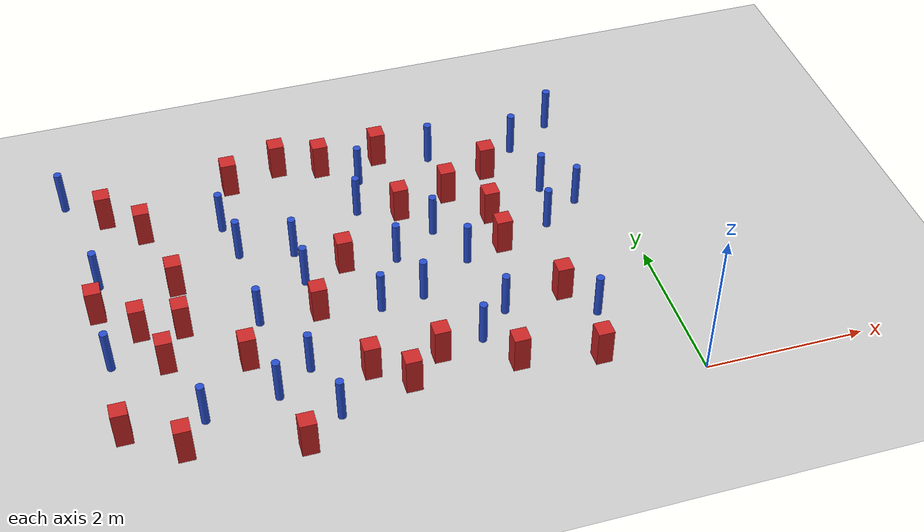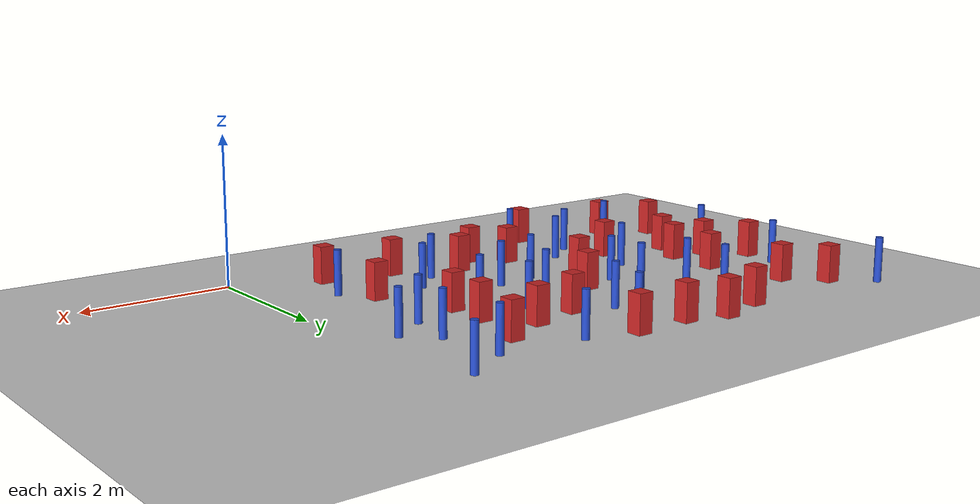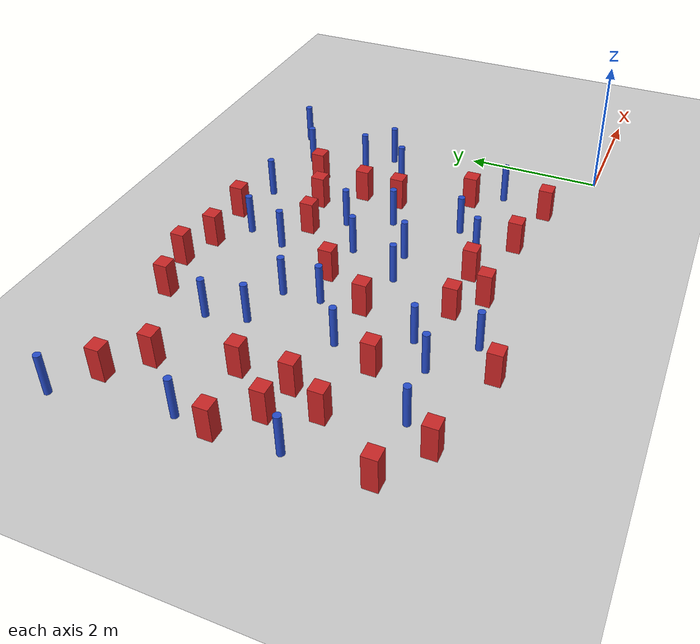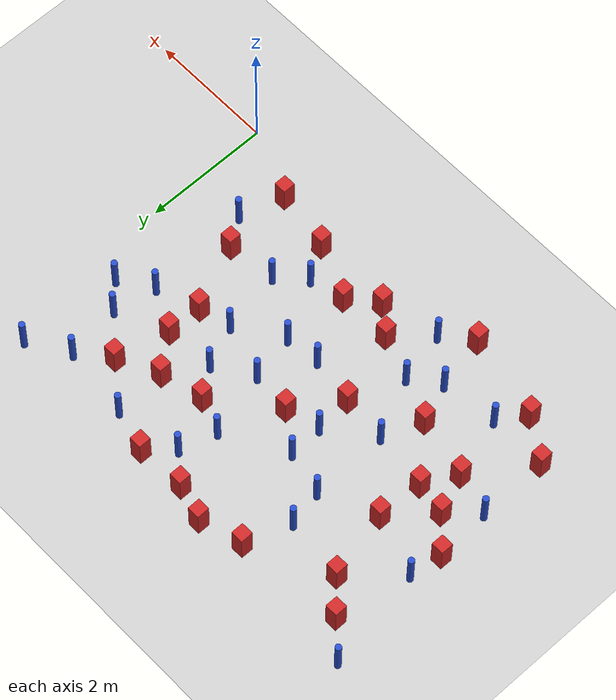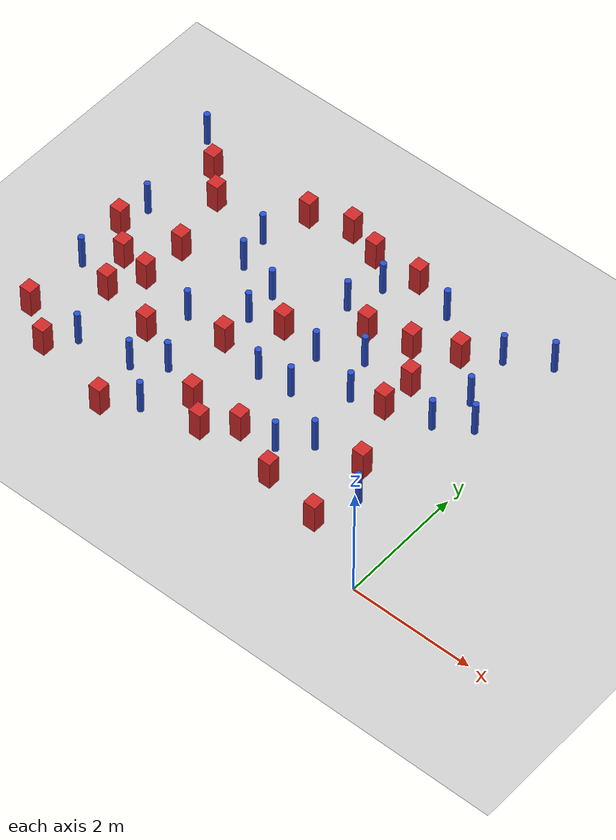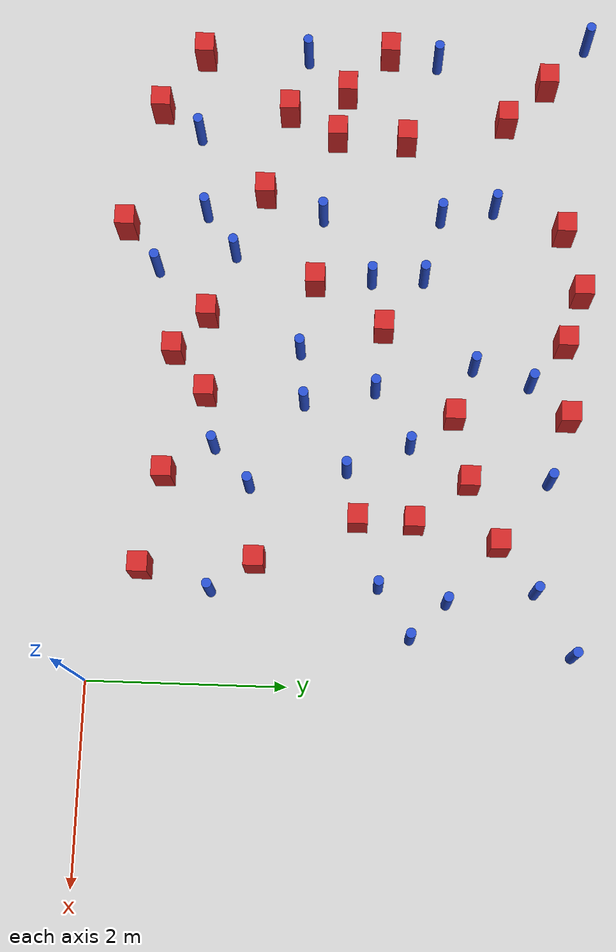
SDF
<sdf version="1.6">
 <world name="default">
  <model name="ground_plane">
   <static>1</static>
   <link name="link">
    <collision name="collision">
     <geometry><plane><normal>0 0 1</normal><size>100 100</size></plane></geometry>
     <surface><friction><ode><mu>100</mu><mu2>50</mu2></ode></friction></surface>
    </collision>
    <visual name="visual">
     <cast_shadows>0</cast_shadows>
     <geometry><plane><normal>0 0 1</normal><size>100 100</size></plane></geometry>
     <material>
      <ambient>1.0 1.0 1.0 1.0</ambient>
      <diffuse>0.8 0.8 0.8 1.0</diffuse>
      <specular>0.01 0.01 0.01 1.000000</specular>
     </material>
    </visual>
   </link>
  </model>
  <model name="square_post_obstacle3">
   <static>true</static>
   <pose>-6.75841199657 2.84869637535 8.22691968438e-08 7.2212513382e-06 -7.54495500217e-07 2.29674213826e-05</pose>
   <link name="link">
    <pose>0 0 0.25 0 -0 0</pose>
    <inertial>
     <mass>100</mass>
     <inertia>
      <ixx>0.166667</ixx>
      <ixy>0</ixy>
      <ixz>0</ixz>
      <iyy>0.166667</iyy>
      <iyz>0</iyz>
      <izz>0.166667</izz>
     </inertia>
    </inertial>
    <collision name="collision"><geometry><box><size>.2 .2 .5</size></box></geometry></collision>
    <visual name="visual">
     <geometry><box><size>.2 .2 .5</size></box></geometry>
     <material>
      <script><name>Gazebo/Red</name><uri>file://media/materials/scripts/gazebo.material</uri></script>
     </material>
    </visual>
   </link>
  </model>
  <model name="square_post_obstacle11">
   <static>true</static>
   <pose>-3.38330933852 0.719082300873 8.22691968438e-08 7.2212513382e-06 -7.54495500217e-07 2.29674213826e-05</pose>
   <link name="link">
    <pose>0 0 0.25 0 -0 0</pose>
    <inertial>
     <mass>100</mass>
     <inertia>
      <ixx>0.166667</ixx>
      <ixy>0</ixy>
      <ixz>0</ixz>
      <iyy>0.166667</iyy>
      <iyz>0</iyz>
      <izz>0.166667</izz>
     </inertia>
    </inertial>
    <collision name="collision"><geometry><box><size>.2 .2 .5</size></box></geometry></collision>
    <visual name="visual">
     <geometry><box><size>.2 .2 .5</size></box></geometry>
     <material>
      <script><name>Gazebo/Red</name><uri>file://media/materials/scripts/gazebo.material</uri></script>
     </material>
    </visual>
   </link>
  </model>
  <model name="square_post_obstacle15">
   <static>true</static>
   <pose>-1.22572078398 1.6397507249 8.22691968438e-08 7.2212513382e-06 -7.54495500217e-07 2.29674213826e-05</pose>
   <link name="link">
    <pose>0 0 0.25 0 -0 0</pose>
    <inertial>
     <mass>100</mass>
     <inertia>
      <ixx>0.166667</ixx>
      <ixy>0</ixy>
      <ixz>0</ixz>
      <iyy>0.166667</iyy>
      <iyz>0</iyz>
      <izz>0.166667</izz>
     </inertia>
    </inertial>
    <collision name="collision"><geometry><box><size>.2 .2 .5</size></box></geometry></collision>
    <visual name="visual">
     <geometry><box><size>.2 .2 .5</size></box></geometry>
     <material>
      <script><name>Gazebo/Red</name><uri>file://media/materials/scripts/gazebo.material</uri></script>
     </material>
    </visual>
   </link>
  </model>
  <model name="square_post_obstacle19">
   <static>true</static>
   <pose>-4.12237302299 4.8903706107 8.22691968438e-08 7.2212513382e-06 -7.54495500217e-07 2.29674213826e-05</pose>
   <link name="link">
    <pose>0 0 0.25 0 -0 0</pose>
    <inertial>
     <mass>100</mass>
     <inertia>
      <ixx>0.166667</ixx>
      <ixy>0</ixy>
      <ixz>0</ixz>
      <iyy>0.166667</iyy>
      <iyz>0</iyz>
      <izz>0.166667</izz>
     </inertia>
    </inertial>
    <collision name="collision"><geometry><box><size>.2 .2 .5</size></box></geometry></collision>
    <visual name="visual">
     <geometry><box><size>.2 .2 .5</size></box></geometry>
     <material>
      <script><name>Gazebo/Red</name><uri>file://media/materials/scripts/gazebo.material</uri></script>
     </material>
    </visual>
   </link>
  </model>
  <model name="pole_obstacle29">
   <static>true</static>
   <pose>-5.77524522382 0.86929448926 2.88873142074e-08 -9.90536689837e-09 4.60219948989e-07 -1.2096599496e-07</pose>
   <link name="link">
    <pose>0 0 0.3 0 -0 0</pose>
    <inertial>
     <mass>1</mass>
     <inertia><ixx>0.145833</ixx><ixy>0</ixy><ixz>0</ixz><iyy>0.145833</iyy><iyz>0</iyz><izz>0.125</izz></inertia>
    </inertial>
    <collision name="collision">
     <geometry><cylinder><radius>0.05</radius><length>.6</length></cylinder></geometry>
    </collision>
    <visual name="visual">
     <geometry><cylinder><radius>0.05</radius><length>.6</length></cylinder></geometry>
     <material>
      <script><name>Gazebo/Blue</name><uri>file://media/materials/scripts/gazebo.material</uri></script>
     </material>
    </visual>
   </link>
  </model>
  <model name="square_post_obstacle21">
   <static>true</static>
   <pose>-5.79454267416 2.32009019014 8.22691968438e-08 7.2212513382e-06 -7.54495500217e-07 2.29674213826e-05</pose>
   <link name="link">
    <pose>0 0 0.25 0 -0 0</pose>
    <inertial>
     <mass>100</mass>
     <inertia>
      <ixx>0.166667</ixx>
      <ixy>0</ixy>
      <ixz>0</ixz>
      <iyy>0.166667</iyy>
      <iyz>0</iyz>
      <izz>0.166667</izz>
     </inertia>
    </inertial>
    <collision name="collision"><geometry><box><size>.2 .2 .5</size></box></geometry></collision>
    <visual name="visual">
     <geometry><box><size>.2 .2 .5</size></box></geometry>
     <material>
      <script><name>Gazebo/Red</name><uri>file://media/materials/scripts/gazebo.material</uri></script>
     </material>
    </visual>
   </link>
  </model>
  <model name="pole_obstacle31">
   <static>true</static>
   <pose>-3.29496590169 3.79206971627 2.88873142074e-08 -9.90536689597e-09 4.60219948995e-07 -1.20965994957e-07</pose>
   <link name="link">
    <pose>0 0 0.3 0 -0 0</pose>
    <inertial>
     <mass>1</mass>
     <inertia><ixx>0.145833</ixx><ixy>0</ixy><ixz>0</ixz><iyy>0.145833</iyy><iyz>0</iyz><izz>0.125</izz></inertia>
    </inertial>
    <collision name="collision">
     <geometry><cylinder><radius>0.05</radius><length>.6</length></cylinder></geometry>
    </collision>
    <visual name="visual">
     <geometry><cylinder><radius>0.05</radius><length>.6</length></cylinder></geometry>
     <material>
      <script><name>Gazebo/Blue</name><uri>file://media/materials/scripts/gazebo.material</uri></script>
     </material>
    </visual>
   </link>
  </model>
  <model name="square_post_obstacle26">
   <static>true</static>
   <pose>-6.44920168257 4.52247922896 8.22691968438e-08 7.22125133819e-06 -7.54495500217e-07 2.29674213826e-05</pose>
   <link name="link">
    <pose>0 0 0.25 0 -0 0</pose>
    <inertial>
     <mass>100</mass>
     <inertia>
      <ixx>0.166667</ixx>
      <ixy>0</ixy>
      <ixz>0</ixz>
      <iyy>0.166667</iyy>
      <iyz>0</iyz>
      <izz>0.166667</izz>
     </inertia>
    </inertial>
    <collision name="collision"><geometry><box><size>.2 .2 .5</size></box></geometry></collision>
    <visual name="visual">
     <geometry><box><size>.2 .2 .5</size></box></geometry>
     <material>
      <script><name>Gazebo/Red</name><uri>file://media/materials/scripts/gazebo.material</uri></script>
     </material>
    </visual>
   </link>
  </model>
  <model name="pole_obstacle34">
   <static>true</static>
   <pose>-4.91597118742 3.42735828325 2.88873142074e-08 -9.90536690245e-09 4.6021994898e-07 -1.20965994966e-07</pose>
   <link name="link">
    <pose>0 0 0.3 0 -0 0</pose>
    <inertial>
     <mass>1</mass>
     <inertia><ixx>0.145833</ixx><ixy>0</ixy><ixz>0</ixz><iyy>0.145833</iyy><iyz>0</iyz><izz>0.125</izz></inertia>
    </inertial>
    <collision name="collision">
     <geometry><cylinder><radius>0.05</radius><length>.6</length></cylinder></geometry>
    </collision>
    <visual name="visual">
     <geometry><cylinder><radius>0.05</radius><length>.6</length></cylinder></geometry>
     <material>
      <script><name>Gazebo/Blue</name><uri>file://media/materials/scripts/gazebo.material</uri></script>
     </material>
    </visual>
   </link>
  </model>
  <model name="pole_obstacle53">
   <static>true</static>
   <pose>-2.44733559677 3.15941907031 2.88873142074e-08 -9.90536690232e-09 4.6021994898e-07 -1.20965994968e-07</pose>
   <link name="link">
    <pose>0 0 0.3 0 -0 0</pose>
    <inertial>
     <mass>1</mass>
     <inertia><ixx>0.145833</ixx><ixy>0</ixy><ixz>0</ixz><iyy>0.145833</iyy><iyz>0</iyz><izz>0.125</izz></inertia>
    </inertial>
    <collision name="collision">
     <geometry><cylinder><radius>0.05</radius><length>.6</length></cylinder></geometry>
    </collision>
    <visual name="visual">
     <geometry><cylinder><radius>0.05</radius><length>.6</length></cylinder></geometry>
     <material>
      <script><name>Gazebo/Blue</name><uri>file://media/materials/scripts/gazebo.material</uri></script>
     </material>
    </visual>
   </link>
  </model>
  <model name="square_post_obstacle41">
   <static>true</static>
   <pose>-6.01156486565 4.09463652384 8.22691968438e-08 7.22125133819e-06 -7.54495500217e-07 2.29674213826e-05</pose>
   <link name="link">
    <pose>0 0 0.25 0 -0 0</pose>
    <inertial>
     <mass>100</mass>
     <inertia>
      <ixx>0.166667</ixx>
      <ixy>0</ixy>
      <ixz>0</ixz>
      <iyy>0.166667</iyy>
      <iyz>0</iyz>
      <izz>0.166667</izz>
     </inertia>
    </inertial>
    <collision name="collision"><geometry><box><size>.2 .2 .5</size></box></geometry></collision>
    <visual name="visual">
     <geometry><box><size>.2 .2 .5</size></box></geometry>
     <material>
      <script><name>Gazebo/Red</name><uri>file://media/materials/scripts/gazebo.material</uri></script>
     </material>
    </visual>
   </link>
  </model>
  <model name="pole_obstacle59">
   <static>true</static>
   <pose>-0.500387353184 3.1998149714 2.88873142074e-08 -9.90536689656e-09 4.60219948993e-07 -1.20965994958e-07</pose>
   <link name="link">
    <pose>0 0 0.3 0 -0 0</pose>
    <inertial>
     <mass>1</mass>
     <inertia><ixx>0.145833</ixx><ixy>0</ixy><ixz>0</ixz><iyy>0.145833</iyy><iyz>0</iyz><izz>0.125</izz></inertia>
    </inertial>
    <collision name="collision">
     <geometry><cylinder><radius>0.05</radius><length>.6</length></cylinder></geometry>
    </collision>
    <visual name="visual">
     <geometry><cylinder><radius>0.05</radius><length>.6</length></cylinder></geometry>
     <material>
      <script><name>Gazebo/Blue</name><uri>file://media/materials/scripts/gazebo.material</uri></script>
     </material>
    </visual>
   </link>
  </model>
  <model name="pole_obstacle62">
   <static>true</static>
   <pose>-6.68137312361 3.35930939322 2.88873142074e-08 -9.90536690245e-09 4.6021994898e-07 -1.20965994966e-07</pose>
   <link name="link">
    <pose>0 0 0.3 0 -0 0</pose>
    <inertial>
     <mass>1</mass>
     <inertia><ixx>0.145833</ixx><ixy>0</ixy><ixz>0</ixz><iyy>0.145833</iyy><iyz>0</iyz><izz>0.125</izz></inertia>
    </inertial>
    <collision name="collision">
     <geometry><cylinder><radius>0.05</radius><length>.6</length></cylinder></geometry>
    </collision>
    <visual name="visual">
     <geometry><cylinder><radius>0.05</radius><length>.6</length></cylinder></geometry>
     <material>
      <script><name>Gazebo/Blue</name><uri>file://media/materials/scripts/gazebo.material</uri></script>
     </material>
    </visual>
   </link>
  </model>
  <model name="pole_obstacle63">
   <static>true</static>
   <pose>-4.24091411456 3.2633486273 2.88873142074e-08 -9.90536690245e-09 4.6021994898e-07 -1.20965994966e-07</pose>
   <link name="link">
    <pose>0 0 0.3 0 -0 0</pose>
    <inertial>
     <mass>1</mass>
     <inertia><ixx>0.145833</ixx><ixy>0</ixy><ixz>0</ixz><iyy>0.145833</iyy><iyz>0</iyz><izz>0.125</izz></inertia>
    </inertial>
    <collision name="collision">
     <geometry><cylinder><radius>0.05</radius><length>.6</length></cylinder></geometry>
    </collision>
    <visual name="visual">
     <geometry><cylinder><radius>0.05</radius><length>.6</length></cylinder></geometry>
     <material>
      <script><name>Gazebo/Blue</name><uri>file://media/materials/scripts/gazebo.material</uri></script>
     </material>
    </visual>
   </link>
  </model>
  <model name="square_post_obstacle51">
   <static>true</static>
   <pose>-4.79568698771 4.70818595058 8.22691968438e-08 7.2212513382e-06 -7.54495500217e-07 2.29674213826e-05</pose>
   <link name="link">
    <pose>0 0 0.25 0 -0 0</pose>
    <inertial>
     <mass>100</mass>
     <inertia>
      <ixx>0.166667</ixx>
      <ixy>0</ixy>
      <ixz>0</ixz>
      <iyy>0.166667</iyy>
      <iyz>0</iyz>
      <izz>0.166667</izz>
     </inertia>
    </inertial>
    <collision name="collision"><geometry><box><size>.2 .2 .5</size></box></geometry></collision>
    <visual name="visual">
     <geometry><box><size>.2 .2 .5</size></box></geometry>
     <material>
      <script><name>Gazebo/Red</name><uri>file://media/materials/scripts/gazebo.material</uri></script>
     </material>
    </visual>
   </link>
  </model>
  <model name="square_post_obstacle52">
   <static>true</static>
   <pose>-1.67509126283 2.65043922061 8.22691968438e-08 7.2212513382e-06 -7.54495500217e-07 2.29674213826e-05</pose>
   <link name="link">
    <pose>0 0 0.25 0 -0 0</pose>
    <inertial>
     <mass>100</mass>
     <inertia>
      <ixx>0.166667</ixx>
      <ixy>0</ixy>
      <ixz>0</ixz>
      <iyy>0.166667</iyy>
      <iyz>0</iyz>
      <izz>0.166667</izz>
     </inertia>
    </inertial>
    <collision name="collision"><geometry><box><size>.2 .2 .5</size></box></geometry></collision>
    <visual name="visual">
     <geometry><box><size>.2 .2 .5</size></box></geometry>
     <material>
      <script><name>Gazebo/Red</name><uri>file://media/materials/scripts/gazebo.material</uri></script>
     </material>
    </visual>
   </link>
  </model>
  <model name="square_post_obstacle58">
   <static>true</static>
   <pose>-1.66645136267 3.21528522979 8.22691968438e-08 7.2212513382e-06 -7.54495500217e-07 2.29674213826e-05</pose>
   <link name="link">
    <pose>0 0 0.25 0 -0 0</pose>
    <inertial>
     <mass>100</mass>
     <inertia>
      <ixx>0.166667</ixx>
      <ixy>0</ixy>
      <ixz>0</ixz>
      <iyy>0.166667</iyy>
      <iyz>0</iyz>
      <izz>0.166667</izz>
     </inertia>
    </inertial>
    <collision name="collision"><geometry><box><size>.2 .2 .5</size></box></geometry></collision>
    <visual name="visual">
     <geometry><box><size>.2 .2 .5</size></box></geometry>
     <material>
      <script><name>Gazebo/Red</name><uri>file://media/materials/scripts/gazebo.material</uri></script>
     </material>
    </visual>
   </link>
  </model>
  <model name="pole_obstacle69">
   <static>true</static>
   <pose>-2.17665470836 2.5263758459 2.88873142074e-08 -9.90536690232e-09 4.6021994898e-07 -1.20965994968e-07</pose>
   <link name="link">
    <pose>0 0 0.3 0 -0 0</pose>
    <inertial>
     <mass>1</mass>
     <inertia><ixx>0.145833</ixx><ixy>0</ixy><ixz>0</ixz><iyy>0.145833</iyy><iyz>0</iyz><izz>0.125</izz></inertia>
    </inertial>
    <collision name="collision">
     <geometry><cylinder><radius>0.05</radius><length>.6</length></cylinder></geometry>
    </collision>
    <visual name="visual">
     <geometry><cylinder><radius>0.05</radius><length>.6</length></cylinder></geometry>
     <material>
      <script><name>Gazebo/Blue</name><uri>file://media/materials/scripts/gazebo.material</uri></script>
     </material>
    </visual>
   </link>
  </model>
  <model name="pole_obstacle70">
   <static>true</static>
   <pose>-4.90031724707 0.978062638203 2.88873142074e-08 -9.90536689329e-09 4.60219949001e-07 -1.20965994952e-07</pose>
   <link name="link">
    <pose>0 0 0.3 0 -0 0</pose>
    <inertial>
     <mass>1</mass>
     <inertia><ixx>0.145833</ixx><ixy>0</ixy><ixz>0</ixz><iyy>0.145833</iyy><iyz>0</iyz><izz>0.125</izz></inertia>
    </inertial>
    <collision name="collision">
     <geometry><cylinder><radius>0.05</radius><length>.6</length></cylinder></geometry>
    </collision>
    <visual name="visual">
     <geometry><cylinder><radius>0.05</radius><length>.6</length></cylinder></geometry>
     <material>
      <script><name>Gazebo/Blue</name><uri>file://media/materials/scripts/gazebo.material</uri></script>
     </material>
    </visual>
   </link>
  </model>
  <model name="square_post_obstacle60">
   <static>true</static>
   <pose>-5.13336520504 1.5876064809 8.22691968438e-08 7.2212513382e-06 -7.54495500217e-07 2.29674213826e-05</pose>
   <link name="link">
    <pose>0 0 0.25 0 -0 0</pose>
    <inertial>
     <mass>100</mass>
     <inertia>
      <ixx>0.166667</ixx>
      <ixy>0</ixy>
      <ixz>0</ixz>
      <iyy>0.166667</iyy>
      <iyz>0</iyz>
      <izz>0.166667</izz>
     </inertia>
    </inertial>
    <collision name="collision"><geometry><box><size>.2 .2 .5</size></box></geometry></collision>
    <visual name="visual">
     <geometry><box><size>.2 .2 .5</size></box></geometry>
     <material>
      <script><name>Gazebo/Red</name><uri>file://media/materials/scripts/gazebo.material</uri></script>
     </material>
    </visual>
   </link>
  </model>
  <model name="square_post_obstacle63">
   <static>true</static>
   <pose>-4.16542804531 2.14009796139 8.22691968438e-08 7.2212513382e-06 -7.54495500217e-07 2.29674213826e-05</pose>
   <link name="link">
    <pose>0 0 0.25 0 -0 0</pose>
    <inertial>
     <mass>100</mass>
     <inertia>
      <ixx>0.166667</ixx>
      <ixy>0</ixy>
      <ixz>0</ixz>
      <iyy>0.166667</iyy>
      <iyz>0</iyz>
      <izz>0.166667</izz>
     </inertia>
    </inertial>
    <collision name="collision"><geometry><box><size>.2 .2 .5</size></box></geometry></collision>
    <visual name="visual">
     <geometry><box><size>.2 .2 .5</size></box></geometry>
     <material>
      <script><name>Gazebo/Red</name><uri>file://media/materials/scripts/gazebo.material</uri></script>
     </material>
    </visual>
   </link>
  </model>
  <model name="square_post_obstacle69">
   <static>true</static>
   <pose>-1.13336967 0.507727325464 8.22691968438e-08 7.22125133819e-06 -7.54495500217e-07 2.29674213826e-05</pose>
   <link name="link">
    <pose>0 0 0.25 0 -0 0</pose>
    <inertial>
     <mass>100</mass>
     <inertia>
      <ixx>0.166667</ixx>
      <ixy>0</ixy>
      <ixz>0</ixz>
      <iyy>0.166667</iyy>
      <iyz>0</iyz>
      <izz>0.166667</izz>
     </inertia>
    </inertial>
    <collision name="collision"><geometry><box><size>.2 .2 .5</size></box></geometry></collision>
    <visual name="visual">
     <geometry><box><size>.2 .2 .5</size></box></geometry>
     <material>
      <script><name>Gazebo/Red</name><uri>file://media/materials/scripts/gazebo.material</uri></script>
     </material>
    </visual>
   </link>
  </model>
  <model name="pole_obstacle84">
   <static>true</static>
   <pose>-1.99107843127 1.54792812785 2.88873142074e-08 -9.90536690043e-09 4.60219948984e-07 -1.20965994963e-07</pose>
   <link name="link">
    <pose>0 0 0.3 0 -0 0</pose>
    <inertial>
     <mass>1</mass>
     <inertia><ixx>0.145833</ixx><ixy>0</ixy><ixz>0</ixz><iyy>0.145833</iyy><iyz>0</iyz><izz>0.125</izz></inertia>
    </inertial>
    <collision name="collision">
     <geometry><cylinder><radius>0.05</radius><length>.6</length></cylinder></geometry>
    </collision>
    <visual name="visual">
     <geometry><cylinder><radius>0.05</radius><length>.6</length></cylinder></geometry>
     <material>
      <script><name>Gazebo/Blue</name><uri>file://media/materials/scripts/gazebo.material</uri></script>
     </material>
    </visual>
   </link>
  </model>
  <model name="pole_obstacle88">
   <static>true</static>
   <pose>-2.11810713153 4.56852171934 2.88873142074e-08 -9.90536689859e-09 4.60219948989e-07 -1.20965994961e-07</pose>
   <link name="link">
    <pose>0 0 0.3 0 -0 0</pose>
    <inertial>
     <mass>1</mass>
     <inertia><ixx>0.145833</ixx><ixy>0</ixy><ixz>0</ixz><iyy>0.145833</iyy><iyz>0</iyz><izz>0.125</izz></inertia>
    </inertial>
    <collision name="collision">
     <geometry><cylinder><radius>0.05</radius><length>.6</length></cylinder></geometry>
    </collision>
    <visual name="visual">
     <geometry><cylinder><radius>0.05</radius><length>.6</length></cylinder></geometry>
     <material>
      <script><name>Gazebo/Blue</name><uri>file://media/materials/scripts/gazebo.material</uri></script>
     </material>
    </visual>
   </link>
  </model>
  <model name="pole_obstacle92">
   <static>true</static>
   <pose>-0.992314418204 4.43364090339 2.88873142074e-08 -9.90536689644e-09 4.60219948994e-07 -1.20965994957e-07</pose>
   <link name="link">
    <pose>0 0 0.3 0 -0 0</pose>
    <inertial>
     <mass>1</mass>
     <inertia><ixx>0.145833</ixx><ixy>0</ixy><ixz>0</ixz><iyy>0.145833</iyy><iyz>0</iyz><izz>0.125</izz></inertia>
    </inertial>
    <collision name="collision">
     <geometry><cylinder><radius>0.05</radius><length>.6</length></cylinder></geometry>
    </collision>
    <visual name="visual">
     <geometry><cylinder><radius>0.05</radius><length>.6</length></cylinder></geometry>
     <material>
      <script><name>Gazebo/Blue</name><uri>file://media/materials/scripts/gazebo.material</uri></script>
     </material>
    </visual>
   </link>
  </model>
  <model name="pole_obstacle93">
   <static>true</static>
   <pose>-0.36878070263 4.80255474043 2.88873142074e-08 -9.90536689683e-09 4.60219948993e-07 -1.20965994957e-07</pose>
   <link name="link">
    <pose>0 0 0.3 0 -0 0</pose>
    <inertial>
     <mass>1</mass>
     <inertia><ixx>0.145833</ixx><ixy>0</ixy><ixz>0</ixz><iyy>0.145833</iyy><iyz>0</iyz><izz>0.125</izz></inertia>
    </inertial>
    <collision name="collision">
     <geometry><cylinder><radius>0.05</radius><length>.6</length></cylinder></geometry>
    </collision>
    <visual name="visual">
     <geometry><cylinder><radius>0.05</radius><length>.6</length></cylinder></geometry>
     <material>
      <script><name>Gazebo/Blue</name><uri>file://media/materials/scripts/gazebo.material</uri></script>
     </material>
    </visual>
   </link>
  </model>
  <model name="pole_obstacle94">
   <static>true</static>
   <pose>-4.89257349856 2.198101873 2.88873142074e-08 -9.90536690245e-09 4.6021994898e-07 -1.20965994966e-07</pose>
   <link name="link">
    <pose>0 0 0.3 0 -0 0</pose>
    <inertial>
     <mass>1</mass>
     <inertia><ixx>0.145833</ixx><ixy>0</ixy><ixz>0</ixz><iyy>0.145833</iyy><iyz>0</iyz><izz>0.125</izz></inertia>
    </inertial>
    <collision name="collision">
     <geometry><cylinder><radius>0.05</radius><length>.6</length></cylinder></geometry>
    </collision>
    <visual name="visual">
     <geometry><cylinder><radius>0.05</radius><length>.6</length></cylinder></geometry>
     <material>
      <script><name>Gazebo/Blue</name><uri>file://media/materials/scripts/gazebo.material</uri></script>
     </material>
    </visual>
   </link>
  </model>
  <model name="square_post_obstacle97">
   <static>true</static>
   <pose>-6.69291307463 0.881571175203 8.22691968438e-08 7.2212513382e-06 -7.54495500217e-07 2.29674213826e-05</pose>
   <link name="link">
    <pose>0 0 0.25 0 -0 0</pose>
    <inertial>
     <mass>100</mass>
     <inertia>
      <ixx>0.166667</ixx>
      <ixy>0</ixy>
      <ixz>0</ixz>
      <iyy>0.166667</iyy>
      <iyz>0</iyz>
      <izz>0.166667</izz>
     </inertia>
    </inertial>
    <collision name="collision"><geometry><box><size>.2 .2 .5</size></box></geometry></collision>
    <visual name="visual">
     <geometry><box><size>.2 .2 .5</size></box></geometry>
     <material>
      <script><name>Gazebo/Red</name><uri>file://media/materials/scripts/gazebo.material</uri></script>
     </material>
    </visual>
   </link>
  </model>
  <model name="pole_obstacle104">
   <static>true</static>
   <pose>-6.93543288714 4.94671390693 2.88873142074e-08 -9.90536690842e-09 4.60219948965e-07 -1.20965994976e-07</pose>
   <link name="link">
    <pose>0 0 0.3 0 -0 0</pose>
    <inertial>
     <mass>1</mass>
     <inertia><ixx>0.145833</ixx><ixy>0</ixy><ixz>0</ixz><iyy>0.145833</iyy><iyz>0</iyz><izz>0.125</izz></inertia>
    </inertial>
    <collision name="collision">
     <geometry><cylinder><radius>0.05</radius><length>.6</length></cylinder></geometry>
    </collision>
    <visual name="visual">
     <geometry><cylinder><radius>0.05</radius><length>.6</length></cylinder></geometry>
     <material>
      <script><name>Gazebo/Blue</name><uri>file://media/materials/scripts/gazebo.material</uri></script>
     </material>
    </visual>
   </link>
  </model>
  <model name="square_post_obstacle100">
   <static>true</static>
   <pose>-4.73185900662 0.158072176739 8.22691968438e-08 7.2212513382e-06 -7.54495500217e-07 2.29674213826e-05</pose>
   <link name="link">
    <pose>0 0 0.25 0 -0 0</pose>
    <inertial>
     <mass>100</mass>
     <inertia>
      <ixx>0.166667</ixx>
      <ixy>0</ixy>
      <ixz>0</ixz>
      <iyy>0.166667</iyy>
      <iyz>0</iyz>
      <izz>0.166667</izz>
     </inertia>
    </inertial>
    <collision name="collision"><geometry><box><size>.2 .2 .5</size></box></geometry></collision>
    <visual name="visual">
     <geometry><box><size>.2 .2 .5</size></box></geometry>
     <material>
      <script><name>Gazebo/Red</name><uri>file://media/materials/scripts/gazebo.material</uri></script>
     </material>
    </visual>
   </link>
  </model>
  <model name="pole_obstacle106">
   <static>true</static>
   <pose>-3.02532332459 2.79193719809 2.88873142074e-08 -9.90536690232e-09 4.6021994898e-07 -1.20965994968e-07</pose>
   <link name="link">
    <pose>0 0 0.3 0 -0 0</pose>
    <inertial>
     <mass>1</mass>
     <inertia><ixx>0.145833</ixx><ixy>0</ixy><ixz>0</ixz><iyy>0.145833</iyy><iyz>0</iyz><izz>0.125</izz></inertia>
    </inertial>
    <collision name="collision">
     <geometry><cylinder><radius>0.05</radius><length>.6</length></cylinder></geometry>
    </collision>
    <visual name="visual">
     <geometry><cylinder><radius>0.05</radius><length>.6</length></cylinder></geometry>
     <material>
      <script><name>Gazebo/Blue</name><uri>file://media/materials/scripts/gazebo.material</uri></script>
     </material>
    </visual>
   </link>
  </model>
  <model name="pole_obstacle109">
   <static>true</static>
   <pose>-3.42095511426 2.01200507069 2.88873142074e-08 -9.9053669202e-09 4.60219948938e-07 -1.20965994983e-07</pose>
   <link name="link">
    <pose>0 0 0.3 0 -0 0</pose>
    <inertial>
     <mass>1</mass>
     <inertia><ixx>0.145833</ixx><ixy>0</ixy><ixz>0</ixz><iyy>0.145833</iyy><iyz>0</iyz><izz>0.125</izz></inertia>
    </inertial>
    <collision name="collision">
     <geometry><cylinder><radius>0.05</radius><length>.6</length></cylinder></geometry>
    </collision>
    <visual name="visual">
     <geometry><cylinder><radius>0.05</radius><length>.6</length></cylinder></geometry>
     <material>
      <script><name>Gazebo/Blue</name><uri>file://media/materials/scripts/gazebo.material</uri></script>
     </material>
    </visual>
   </link>
  </model>
  <model name="square_post_obstacle113">
   <static>true</static>
   <pose>-3.79034692241 1.0451468337 8.22691968438e-08 7.2212513382e-06 -7.54495500217e-07 2.29674213826e-05</pose>
   <link name="link">
    <pose>0 0 0.25 0 -0 0</pose>
    <inertial>
     <mass>100</mass>
     <inertia>
      <ixx>0.166667</ixx>
      <ixy>0</ixy>
      <ixz>0</ixz>
      <iyy>0.166667</iyy>
      <iyz>0</iyz>
      <izz>0.166667</izz>
     </inertia>
    </inertial>
    <collision name="collision"><geometry><box><size>.2 .2 .5</size></box></geometry></collision>
    <visual name="visual">
     <geometry><box><size>.2 .2 .5</size></box></geometry>
     <material>
      <script><name>Gazebo/Red</name><uri>file://media/materials/scripts/gazebo.material</uri></script>
     </material>
    </visual>
   </link>
  </model>
  <model name="pole_obstacle120">
   <static>true</static>
   <pose>-0.999616413624 2.87392840131 2.88873142074e-08 -9.90536689742e-09 4.60219948991e-07 -1.2096599496e-07</pose>
   <link name="link">
    <pose>0 0 0.3 0 -0 0</pose>
    <inertial>
     <mass>1</mass>
     <inertia><ixx>0.145833</ixx><ixy>0</ixy><ixz>0</ixz><iyy>0.145833</iyy><iyz>0</iyz><izz>0.125</izz></inertia>
    </inertial>
    <collision name="collision">
     <geometry><cylinder><radius>0.05</radius><length>.6</length></cylinder></geometry>
    </collision>
    <visual name="visual">
     <geometry><cylinder><radius>0.05</radius><length>.6</length></cylinder></geometry>
     <material>
      <script><name>Gazebo/Blue</name><uri>file://media/materials/scripts/gazebo.material</uri></script>
     </material>
    </visual>
   </link>
  </model>
  <model name="pole_obstacle123">
   <static>true</static>
   <pose>-0.862793064482 3.55537037526 2.88873142074e-08 -9.90536689636e-09 4.60219948994e-07 -1.20965994958e-07</pose>
   <link name="link">
    <pose>0 0 0.3 0 -0 0</pose>
    <inertial>
     <mass>1</mass>
     <inertia><ixx>0.145833</ixx><ixy>0</ixy><ixz>0</ixz><iyy>0.145833</iyy><iyz>0</iyz><izz>0.125</izz></inertia>
    </inertial>
    <collision name="collision">
     <geometry><cylinder><radius>0.05</radius><length>.6</length></cylinder></geometry>
    </collision>
    <visual name="visual">
     <geometry><cylinder><radius>0.05</radius><length>.6</length></cylinder></geometry>
     <material>
      <script><name>Gazebo/Blue</name><uri>file://media/materials/scripts/gazebo.material</uri></script>
     </material>
    </visual>
   </link>
  </model>
  <model name="pole_obstacle128">
   <static>true</static>
   <pose>-6.7047421214 1.97871795518 2.88873142074e-08 -9.90536689273e-09 4.60219949003e-07 -1.20965994953e-07</pose>
   <link name="link">
    <pose>0 0 0.3 0 -0 0</pose>
    <inertial>
     <mass>1</mass>
     <inertia><ixx>0.145833</ixx><ixy>0</ixy><ixz>0</ixz><iyy>0.145833</iyy><iyz>0</iyz><izz>0.125</izz></inertia>
    </inertial>
    <collision name="collision">
     <geometry><cylinder><radius>0.05</radius><length>.6</length></cylinder></geometry>
    </collision>
    <visual name="visual">
     <geometry><cylinder><radius>0.05</radius><length>.6</length></cylinder></geometry>
     <material>
      <script><name>Gazebo/Blue</name><uri>file://media/materials/scripts/gazebo.material</uri></script>
     </material>
    </visual>
   </link>
  </model>
  <model name="pole_obstacle132">
   <static>true</static>
   <pose>-2.38979636733 1.17573233378 2.88873142074e-08 -9.90536689395e-09 4.60219949e-07 -1.20965994953e-07</pose>
   <link name="link">
    <pose>0 0 0.3 0 -0 0</pose>
    <inertial>
     <mass>1</mass>
     <inertia><ixx>0.145833</ixx><ixy>0</ixy><ixz>0</ixz><iyy>0.145833</iyy><iyz>0</iyz><izz>0.125</izz></inertia>
    </inertial>
    <collision name="collision">
     <geometry><cylinder><radius>0.05</radius><length>.6</length></cylinder></geometry>
    </collision>
    <visual name="visual">
     <geometry><cylinder><radius>0.05</radius><length>.6</length></cylinder></geometry>
     <material>
      <script><name>Gazebo/Blue</name><uri>file://media/materials/scripts/gazebo.material</uri></script>
     </material>
    </visual>
   </link>
  </model>
  <model name="square_post_obstacle135">
   <static>true</static>
   <pose>-2.09429100741 0.687529057238 8.22691968438e-08 7.2212513382e-06 -7.54495500217e-07 2.29674213826e-05</pose>
   <link name="link">
    <pose>0 0 0.25 0 -0 0</pose>
    <inertial>
     <mass>100</mass>
     <inertia>
      <ixx>0.166667</ixx>
      <ixy>0</ixy>
      <ixz>0</ixz>
      <iyy>0.166667</iyy>
      <iyz>0</iyz>
      <izz>0.166667</izz>
     </inertia>
    </inertial>
    <collision name="collision"><geometry><box><size>.2 .2 .5</size></box></geometry></collision>
    <visual name="visual">
     <geometry><box><size>.2 .2 .5</size></box></geometry>
     <material>
      <script><name>Gazebo/Red</name><uri>file://media/materials/scripts/gazebo.material</uri></script>
     </material>
    </visual>
   </link>
  </model>
  <model name="square_post_obstacle138">
   <static>true</static>
   <pose>-3.68089654833 2.85893943377 8.22691968438e-08 7.2212513382e-06 -7.54495500217e-07 2.29674213826e-05</pose>
   <link name="link">
    <pose>0 0 0.25 0 -0 0</pose>
    <inertial>
     <mass>100</mass>
     <inertia>
      <ixx>0.166667</ixx>
      <ixy>0</ixy>
      <ixz>0</ixz>
      <iyy>0.166667</iyy>
      <iyz>0</iyz>
      <izz>0.166667</izz>
     </inertia>
    </inertial>
    <collision name="collision"><geometry><box><size>.2 .2 .5</size></box></geometry></collision>
    <visual name="visual">
     <geometry><box><size>.2 .2 .5</size></box></geometry>
     <material>
      <script><name>Gazebo/Red</name><uri>file://media/materials/scripts/gazebo.material</uri></script>
     </material>
    </visual>
   </link>
  </model>
  <model name="pole_obstacle151">
   <static>true</static>
   <pose>-4.464558701 1.29616878003 2.88873142074e-08 -9.90536689445e-09 4.60219948999e-07 -1.20965994956e-07</pose>
   <link name="link">
    <pose>0 0 0.3 0 -0 0</pose>
    <inertial>
     <mass>1</mass>
     <inertia><ixx>0.145833</ixx><ixy>0</ixy><ixz>0</ixz><iyy>0.145833</iyy><iyz>0</iyz><izz>0.125</izz></inertia>
    </inertial>
    <collision name="collision">
     <geometry><cylinder><radius>0.05</radius><length>.6</length></cylinder></geometry>
    </collision>
    <visual name="visual">
     <geometry><cylinder><radius>0.05</radius><length>.6</length></cylinder></geometry>
     <material>
      <script><name>Gazebo/Blue</name><uri>file://media/materials/scripts/gazebo.material</uri></script>
     </material>
    </visual>
   </link>
  </model>
  <model name="pole_obstacle156">
   <static>true</static>
   <pose>-3.13157234241 4.37251759671 2.88873142074e-08 -9.90536689859e-09 4.60219948989e-07 -1.20965994961e-07</pose>
   <link name="link">
    <pose>0 0 0.3 0 -0 0</pose>
    <inertial>
     <mass>1</mass>
     <inertia><ixx>0.145833</ixx><ixy>0</ixy><ixz>0</ixz><iyy>0.145833</iyy><iyz>0</iyz><izz>0.125</izz></inertia>
    </inertial>
    <collision name="collision">
     <geometry><cylinder><radius>0.05</radius><length>.6</length></cylinder></geometry>
    </collision>
    <visual name="visual">
     <geometry><cylinder><radius>0.05</radius><length>.6</length></cylinder></geometry>
     <material>
      <script><name>Gazebo/Blue</name><uri>file://media/materials/scripts/gazebo.material</uri></script>
     </material>
    </visual>
   </link>
  </model>
  <model name="square_post_obstacle158">
   <static>true</static>
   <pose>-2.77236230762 3.59930911172 8.22691968438e-08 7.2212513382e-06 -7.54495500217e-07 2.29674213826e-05</pose>
   <link name="link">
    <pose>0 0 0.25 0 -0 0</pose>
    <inertial>
     <mass>100</mass>
     <inertia>
      <ixx>0.166667</ixx>
      <ixy>0</ixy>
      <ixz>0</ixz>
      <iyy>0.166667</iyy>
      <iyz>0</iyz>
      <izz>0.166667</izz>
     </inertia>
    </inertial>
    <collision name="collision"><geometry><box><size>.2 .2 .5</size></box></geometry></collision>
    <visual name="visual">
     <geometry><box><size>.2 .2 .5</size></box></geometry>
     <material>
      <script><name>Gazebo/Red</name><uri>file://media/materials/scripts/gazebo.material</uri></script>
     </material>
    </visual>
   </link>
  </model>
  <model name="square_post_obstacle160">
   <static>true</static>
   <pose>-5.76616683333 3.04874570291 8.22691968438e-08 7.2212513382e-06 -7.54495500217e-07 2.29674213826e-05</pose>
   <link name="link">
    <pose>0 0 0.25 0 -0 0</pose>
    <inertial>
     <mass>100</mass>
     <inertia>
      <ixx>0.166667</ixx>
      <ixy>0</ixy>
      <ixz>0</ixz>
      <iyy>0.166667</iyy>
      <iyz>0</iyz>
      <izz>0.166667</izz>
     </inertia>
    </inertial>
    <collision name="collision"><geometry><box><size>.2 .2 .5</size></box></geometry></collision>
    <visual name="visual">
     <geometry><box><size>.2 .2 .5</size></box></geometry>
     <material>
      <script><name>Gazebo/Red</name><uri>file://media/materials/scripts/gazebo.material</uri></script>
     </material>
    </visual>
   </link>
  </model>
  <model name="pole_obstacle172">
   <static>true</static>
   <pose>-2.8724455733 2.07077993771 2.88873142074e-08 -9.90536690232e-09 4.6021994898e-07 -1.20965994968e-07</pose>
   <link name="link">
    <pose>0 0 0.3 0 -0 0</pose>
    <inertial>
     <mass>1</mass>
     <inertia><ixx>0.145833</ixx><ixy>0</ixy><ixz>0</ixz><iyy>0.145833</iyy><iyz>0</iyz><izz>0.125</izz></inertia>
    </inertial>
    <collision name="collision">
     <geometry><cylinder><radius>0.05</radius><length>.6</length></cylinder></geometry>
    </collision>
    <visual name="visual">
     <geometry><cylinder><radius>0.05</radius><length>.6</length></cylinder></geometry>
     <material>
      <script><name>Gazebo/Blue</name><uri>file://media/materials/scripts/gazebo.material</uri></script>
     </material>
    </visual>
   </link>
  </model>
  <model name="square_post_obstacle172">
   <static>true</static>
   <pose>-2.94394770511 1.06554291283 8.22691968438e-08 7.2212513382e-06 -7.54495500217e-07 2.29674213826e-05</pose>
   <link name="link">
    <pose>0 0 0.25 0 -0 0</pose>
    <inertial>
     <mass>100</mass>
     <inertia>
      <ixx>0.166667</ixx>
      <ixy>0</ixy>
      <ixz>0</ixz>
      <iyy>0.166667</iyy>
      <iyz>0</iyz>
      <izz>0.166667</izz>
     </inertia>
    </inertial>
    <collision name="collision"><geometry><box><size>.2 .2 .5</size></box></geometry></collision>
    <visual name="visual">
     <geometry><box><size>.2 .2 .5</size></box></geometry>
     <material>
      <script><name>Gazebo/Red</name><uri>file://media/materials/scripts/gazebo.material</uri></script>
     </material>
    </visual>
   </link>
  </model>
  <model name="square_post_obstacle181">
   <static>true</static>
   <pose>-2.78629529116 4.75488070591 8.22691968438e-08 7.2212513382e-06 -7.54495500217e-07 2.29674213826e-05</pose>
   <link name="link">
    <pose>0 0 0.25 0 -0 0</pose>
    <inertial>
     <mass>100</mass>
     <inertia>
      <ixx>0.166667</ixx>
      <ixy>0</ixy>
      <ixz>0</ixz>
      <iyy>0.166667</iyy>
      <iyz>0</iyz>
      <izz>0.166667</izz>
     </inertia>
    </inertial>
    <collision name="collision"><geometry><box><size>.2 .2 .5</size></box></geometry></collision>
    <visual name="visual">
     <geometry><box><size>.2 .2 .5</size></box></geometry>
     <material>
      <script><name>Gazebo/Red</name><uri>file://media/materials/scripts/gazebo.material</uri></script>
     </material>
    </visual>
   </link>
  </model>
  <model name="square_post_obstacle182">
   <static>true</static>
   <pose>-2.09480035708 3.75662891097 8.22691968438e-08 7.2212513382e-06 -7.54495500217e-07 2.29674213826e-05</pose>
   <link name="link">
    <pose>0 0 0.25 0 -0 0</pose>
    <inertial>
     <mass>100</mass>
     <inertia>
      <ixx>0.166667</ixx>
      <ixy>0</ixy>
      <ixz>0</ixz>
      <iyy>0.166667</iyy>
      <iyz>0</iyz>
      <izz>0.166667</izz>
     </inertia>
    </inertial>
    <collision name="collision"><geometry><box><size>.2 .2 .5</size></box></geometry></collision>
    <visual name="visual">
     <geometry><box><size>.2 .2 .5</size></box></geometry>
     <material>
      <script><name>Gazebo/Red</name><uri>file://media/materials/scripts/gazebo.material</uri></script>
     </material>
    </visual>
   </link>
  </model>
  <model name="square_post_obstacle183">
   <static>true</static>
   <pose>-3.57293375781 4.72652024936 8.22691968438e-08 7.2212513382e-06 -7.54495500217e-07 2.29674213826e-05</pose>
   <link name="link">
    <pose>0 0 0.25 0 -0 0</pose>
    <inertial>
     <mass>100</mass>
     <inertia>
      <ixx>0.166667</ixx>
      <ixy>0</ixy>
      <ixz>0</ixz>
      <iyy>0.166667</iyy>
      <iyz>0</iyz>
      <izz>0.166667</izz>
     </inertia>
    </inertial>
    <collision name="collision"><geometry><box><size>.2 .2 .5</size></box></geometry></collision>
    <visual name="visual">
     <geometry><box><size>.2 .2 .5</size></box></geometry>
     <material>
      <script><name>Gazebo/Red</name><uri>file://media/materials/scripts/gazebo.material</uri></script>
     </material>
    </visual>
   </link>
  </model>
  <model name="pole_obstacle185">
   <static>true</static>
   <pose>-4.21332925851 2.72426351664 2.88873142074e-08 -9.90536690245e-09 4.6021994898e-07 -1.20965994966e-07</pose>
   <link name="link">
    <pose>0 0 0.3 0 -0 0</pose>
    <inertial>
     <mass>1</mass>
     <inertia><ixx>0.145833</ixx><ixy>0</ixy><ixz>0</ixz><iyy>0.145833</iyy><iyz>0</iyz><izz>0.125</izz></inertia>
    </inertial>
    <collision name="collision">
     <geometry><cylinder><radius>0.05</radius><length>.6</length></cylinder></geometry>
    </collision>
    <visual name="visual">
     <geometry><cylinder><radius>0.05</radius><length>.6</length></cylinder></geometry>
     <material>
      <script><name>Gazebo/Blue</name><uri>file://media/materials/scripts/gazebo.material</uri></script>
     </material>
    </visual>
   </link>
  </model>
  <model name="square_post_obstacle208">
   <static>true</static>
   <pose>-1.46706569456 4.06096402264 8.22691968438e-08 7.22125133819e-06 -7.54495500217e-07 2.29674213826e-05</pose>
   <link name="link">
    <pose>0 0 0.25 0 -0 0</pose>
    <inertial>
     <mass>100</mass>
     <inertia>
      <ixx>0.166667</ixx>
      <ixy>0</ixy>
      <ixz>0</ixz>
      <iyy>0.166667</iyy>
      <iyz>0</iyz>
      <izz>0.166667</izz>
     </inertia>
    </inertial>
    <collision name="collision"><geometry><box><size>.2 .2 .5</size></box></geometry></collision>
    <visual name="visual">
     <geometry><box><size>.2 .2 .5</size></box></geometry>
     <material>
      <script><name>Gazebo/Red</name><uri>file://media/materials/scripts/gazebo.material</uri></script>
     </material>
    </visual>
   </link>
  </model>
  <model name="pole_obstacle197">
   <static>true</static>
   <pose>-5.03355279537 3.98394438251 2.88873142074e-08 -9.9053669014e-09 4.60219948982e-07 -1.20965994965e-07</pose>
   <link name="link">
    <pose>0 0 0.3 0 -0 0</pose>
    <inertial>
     <mass>1</mass>
     <inertia><ixx>0.145833</ixx><ixy>0</ixy><ixz>0</ixz><iyy>0.145833</iyy><iyz>0</iyz><izz>0.125</izz></inertia>
    </inertial>
    <collision name="collision">
     <geometry><cylinder><radius>0.05</radius><length>.6</length></cylinder></geometry>
    </collision>
    <visual name="visual">
     <geometry><cylinder><radius>0.05</radius><length>.6</length></cylinder></geometry>
     <material>
      <script><name>Gazebo/Blue</name><uri>file://media/materials/scripts/gazebo.material</uri></script>
     </material>
    </visual>
   </link>
  </model>
  <model name="pole_obstacle199">
   <static>true</static>
   <pose>-4.27628386181 0.501004646456 2.88873142074e-08 -9.90536689326e-09 4.60219949001e-07 -1.20965994954e-07</pose>
   <link name="link">
    <pose>0 0 0.3 0 -0 0</pose>
    <inertial>
     <mass>1</mass>
     <inertia><ixx>0.145833</ixx><ixy>0</ixy><ixz>0</ixz><iyy>0.145833</iyy><iyz>0</iyz><izz>0.125</izz></inertia>
    </inertial>
    <collision name="collision">
     <geometry><cylinder><radius>0.05</radius><length>.6</length></cylinder></geometry>
    </collision>
    <visual name="visual">
     <geometry><cylinder><radius>0.05</radius><length>.6</length></cylinder></geometry>
     <material>
      <script><name>Gazebo/Blue</name><uri>file://media/materials/scripts/gazebo.material</uri></script>
     </material>
    </visual>
   </link>
  </model>
  <model name="pole_obstacle200">
   <static>true</static>
   <pose>-0.922177394743 1.20547219865 2.88873142074e-08 -9.90536689855e-09 4.60219948989e-07 -1.20965994962e-07</pose>
   <link name="link">
    <pose>0 0 0.3 0 -0 0</pose>
    <inertial>
     <mass>1</mass>
     <inertia><ixx>0.145833</ixx><ixy>0</ixy><ixz>0</ixz><iyy>0.145833</iyy><iyz>0</iyz><izz>0.125</izz></inertia>
    </inertial>
    <collision name="collision">
     <geometry><cylinder><radius>0.05</radius><length>.6</length></cylinder></geometry>
    </collision>
    <visual name="visual">
     <geometry><cylinder><radius>0.05</radius><length>.6</length></cylinder></geometry>
     <material>
      <script><name>Gazebo/Blue</name><uri>file://media/materials/scripts/gazebo.material</uri></script>
     </material>
    </visual>
   </link>
  </model>
  <model name="square_post_obstacle218">
   <static>true</static>
   <pose>-6.29966996738 2.40966996466 8.22691968438e-08 7.2212513382e-06 -7.54495500217e-07 2.29674213826e-05</pose>
   <link name="link">
    <pose>0 0 0.25 0 -0 0</pose>
    <inertial>
     <mass>100</mass>
     <inertia>
      <ixx>0.166667</ixx>
      <ixy>0</ixy>
      <ixz>0</ixz>
      <iyy>0.166667</iyy>
      <iyz>0</iyz>
      <izz>0.166667</izz>
     </inertia>
    </inertial>
    <collision name="collision"><geometry><box><size>.2 .2 .5</size></box></geometry></collision>
    <visual name="visual">
     <geometry><box><size>.2 .2 .5</size></box></geometry>
     <material>
      <script><name>Gazebo/Red</name><uri>file://media/materials/scripts/gazebo.material</uri></script>
     </material>
    </visual>
   </link>
  </model>
  <model name="square_post_obstacle230">
   <static>true</static>
   <pose>-6.06357996738 0.455502964659 8.22691968438e-08 7.2212513382e-06 -7.54495500217e-07 2.29674213826e-05</pose>
   <link name="link">
    <pose>0 0 0.25 0 -0 0</pose>
    <inertial>
     <mass>100</mass>
     <inertia>
      <ixx>0.166667</ixx>
      <ixy>0</ixy>
      <ixz>0</ixz>
      <iyy>0.166667</iyy>
      <iyz>0</iyz>
      <izz>0.166667</izz>
     </inertia>
    </inertial>
    <collision name="collision"><geometry><box><size>.2 .2 .5</size></box></geometry></collision>
    <visual name="visual">
     <geometry><box><size>.2 .2 .5</size></box></geometry>
     <material>
      <script><name>Gazebo/Red</name><uri>file://media/materials/scripts/gazebo.material</uri></script>
     </material>
    </visual>
   </link>
  </model>
  <model name="square_post_obstacle240">
   <static>true</static>
   <pose>-6.06552996738 1.80717996466 8.22691968438e-08 7.22125133819e-06 -7.54495500217e-07 2.29674213826e-05</pose>
   <link name="link">
    <pose>0 0 0.25 0 -0 0</pose>
    <inertial>
     <mass>100</mass>
     <inertia>
      <ixx>0.166667</ixx>
      <ixy>0</ixy>
      <ixz>0</ixz>
      <iyy>0.166667</iyy>
      <iyz>0</iyz>
      <izz>0.166667</izz>
     </inertia>
    </inertial>
    <collision name="collision"><geometry><box><size>.2 .2 .5</size></box></geometry></collision>
    <visual name="visual">
     <geometry><box><size>.2 .2 .5</size></box></geometry>
     <material>
      <script><name>Gazebo/Red</name><uri>file://media/materials/scripts/gazebo.material</uri></script>
     </material>
    </visual>
   </link>
  </model>
 </world>
</sdf>
